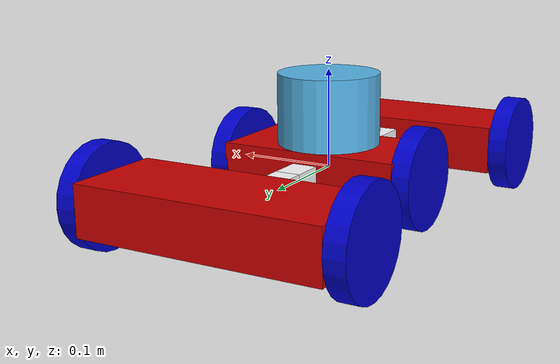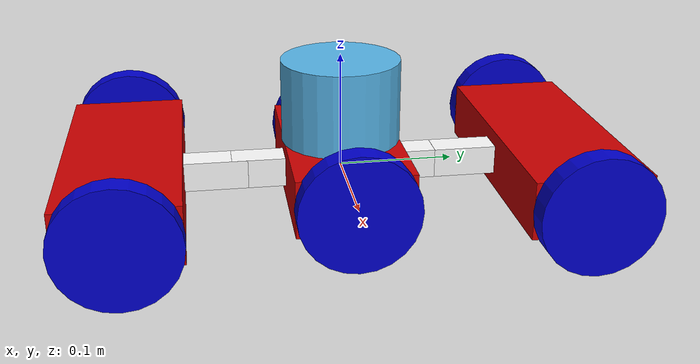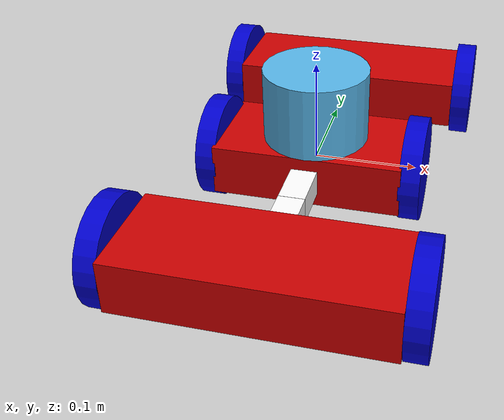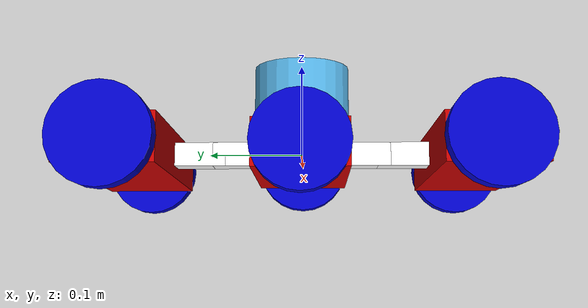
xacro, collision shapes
<?xml version="1.0"?>
<robot xmlns:xacro="http://www.ros.org/wiki/xacro" name="wallcrawler_lidar">
  <xacro:arg name="gpu" default="false"/>
  <xacro:property name="gpu" value="$(arg gpu)" />
    <!-- Define material (colors) -->
    <material name="blue">
        <color rgba="0 0 0.8 1"/>
    </material>

    <material name="white">
        <color rgba="1 1 1 1"/>
    </material>

    <material name="black">
        <color rgba="0.2 0.2 0.2 1"/>
    </material>

    <material name="red">
        <color rgba="0.8 0 0 1"/>
    </material>

    <!-- Define base link (Choosing center segment) -->
    <link name="base_link">
        <visual>
        <geometry>
            <box size="0.184 0.1 0.05"/>
        </geometry>
        <material name="red"/>
        </visual>
        <collision>
        <geometry>
            <box size="0.184 0.1 0.05"/>
        </geometry>
        </collision>
        <inertial>
        <mass value="0.29"/>
        <inertia ixx="0.001483683" ixy="0.0" ixz="0.00" iyy="0.0004067691" iyz="0.00" izz="0.0011120307"/>
        </inertial>
    </link>

    <xacro:include filename="$(find wallcrawler_description)/urdf/VLP-16.urdf.xacro"/>
  <VLP-16 parent="base_link" name="velodyne" topic="/velodyne_points" hz="10" samples="440" gpu="${gpu}">
    <origin xyz="0 0 0.025" rpy="0 0 0" />
  </VLP-16>

    <!-- Wheels attached to base/central link -->
    <link name="center_right_wheel">
        <visual>
        <geometry>
            <cylinder length="0.02" radius="0.051"/>
        </geometry>
        <origin rpy="0 1.57 0" xyz="0 0.0 0.0"/>
        <material name="blue"/>
        </visual>
        <collision>
      <geometry>
            <cylinder length="0.02" radius="0.051"/>
        </geometry>
        <origin rpy="0 1.57 0" xyz="0 0.0 0.0"/>
        </collision>
        <inertial>
        <origin rpy="0 1.57 0" xyz="0 0.0 0.0"/>
        <mass value="0.57"/>
        <inertia ixx="0.0004272539" ixy="0" ixz="0" iyy="0.000804759" iyz="0.00" izz="0.0004272539"/>
        </inertial>
    </link>

    <joint name="center_right_wheel_joint" type="continuous">
        <axis xyz="1 0 0" rpy="0 0 0"/>
        <parent link="base_link"/>
        <child link="center_right_wheel"/>
        <origin xyz="0.1 0.0 0.0"/>
    </joint>

    <gazebo reference="center_right_wheel">
        <mu1 value="200.0"/>
        <mu2 value="100.0"/>
        <kp value="10000000.0"/>
        <kd value="1.0"/>
    </gazebo>

    <transmission name="center_right_wheel_transmission">
        <type>transmission_interface/SimpleTransmission</type>
        <joint name="center_right_wheel_joint">
            <hardwareInterface>VelocityJointInterface</hardwareInterface>
        </joint>
        <actuator name="center_right_wheel_actuator">
            <mechanicalReduction>7</mechanicalReduction>
            <hardwareInterface>VelocityJointInterface</hardwareInterface>
        </actuator>
    </transmission>

    <link name="center_left_wheel">
        <visual>
        <geometry>
            <cylinder length="0.02" radius="0.051"/>
        </geometry>
        <origin rpy="0 1.57 0" xyz="0 0.0 0.0"/>
        <material name="blue"/>
        </visual>
        <collision>
        <geometry>
            <cylinder length="0.02" radius="0.051"/>
        </geometry>
        <origin rpy="0 1.57 0" xyz="0 0.0 0.0"/>
        </collision>
        <inertial>
        <origin rpy="0 1.57 0" xyz="0 0.0 0.0"/>
        <mass value="0.57"/>
        <inertia ixx="0.0004272539" ixy="0" ixz="0" iyy="0.000804759" iyz="0.00" izz="0.0004272539"/>
        </inertial>
    </link>

    <joint name="center_left_wheel_joint" type="continuous">
        <axis xyz="1 0 0"/>
        <parent link="base_link"/>
        <child link="center_left_wheel"/>
        <origin xyz="-0.1 0.0 0.0"/>
    </joint>

    <gazebo reference="center_left_wheel">
        <mu1 value="200.0"/>
        <mu2 value="100.0"/>
        <kp value="10000000.0"/>
        <kd value="1.0"/>
    </gazebo>

    <transmission name="center_left_wheel_transmission">
        <type>transmission_interface/SimpleTransmission</type>
        <joint name="center_left_wheel_joint">
            <hardwareInterface>VelocityJointInterface</hardwareInterface>
        </joint>
        <actuator name="center_left_wheel_actuator">
            <mechanicalReduction>7</mechanicalReduction>
            <hardwareInterface>VelocityJointInterface</hardwareInterface>
        </actuator>
    </transmission>

    <!-- linkage to segment at the front -->

    <link name="base_to_front_link1">
        <visual>
        <geometry>
            <box size="0.0254 0.0254 0.055"/>
        </geometry>
        <material name="white"/>
        <origin rpy="1.57 0 0" xyz="0 0.01875 0"/>
        </visual>
        <collision>
        <geometry>
            <box size="0.0254 0.0254 0.055"/>
        </geometry>
        <origin rpy="1.57 0 0" xyz="0 0.01875 0"/>
        </collision>
        <inertial>
        <origin rpy="1.57 0 0" xyz="0 0.01875 0"/>
        <mass value="0.054"/>
        <inertia ixx="0.000032190362" ixy="0.00" ixz="0.00" iyy="0.000032190362" iyz="0.00" izz="0.000005852793"/>
        </inertial>

    </link>

    <joint name="b2flink1_to_baselink" type="revolute">
        <axis xyz="0 1 0"/>
        <limit effort="10.0" lower="0.0" upper="0.548" velocity="0.5"/>
        <parent link="base_link"/>
        <child link="base_to_front_link1"/>
        <origin xyz="0 0.05 0"/>
    </joint>

    <link name="front_link2">
        <visual>
        <geometry>
            <box size="0.0254 0.0254 0.055"/>
        </geometry>
        <material name="white"/>
        <origin rpy="1.57 0 0" xyz="0 0.0 0"/>
        </visual>
        <collision>
       <geometry>
            <box size="0.0254 0.0254 0.055"/>
        </geometry>
        <origin rpy="1.57 0 0" xyz="0 0.0 0"/>
        </collision>
        <inertial>
        <origin rpy="1.57 0 0" xyz="0 0.0 0"/>
        <mass value="0.054"/>
        <inertia ixx="0.000032190362" ixy="0.00" ixz="0.00" iyy="0.000032190362" iyz="0.00" izz="0.000005852793"/>
        </inertial>
    </link>

    <joint name="b2flink1_to_link2" type="revolute">
        <axis xyz="1 0 0"/>
        <limit effort="10.0" lower="-1.57" upper="1.57" velocity="0.5"/>
        <parent link="base_to_front_link1"/>
        <child link="front_link2"/>
        <origin xyz="0 0.06 0"/>
    </joint>

        <!-- torsional spring element -->
    <gazebo>
        <plugin name="front_torsional_spring" filename="libgazebo_joint_torsional_spring.so">
            <kx>0.1</kx>
            <set_point>0.0</set_point>
            <joint>b2flink1_to_link2</joint>
        </plugin>
    </gazebo>

        <!-- linkage to segment at the back -->

    <link name="base_to_back_link1">
        <visual>
        <geometry>
            <box size="0.0254 0.0254 0.055"/>
        </geometry>
        <material name="white"/>
        <origin rpy="1.57 0 0" xyz="0 -0.01875 0"/>
        </visual>
        <collision>
        <geometry>
            <box size="0.0254 0.0254 0.055"/>
        </geometry>
        <origin rpy="1.57 0 0" xyz="0 -0.01875 0"/>
        </collision>
        <inertial>
        <origin rpy="1.57 0 0" xyz="0 -0.01875 0"/>
        <mass value="0.054"/>
        <inertia ixx="0.000032190362" ixy="0.00" ixz="0.00" iyy="0.000032190362" iyz="0.00" izz="0.000005852793"/>
        </inertial>
    </link>

    <joint name="b2blink1_to_baselink" type="revolute">
        <axis xyz="0 1 0"/>
        <limit effort="1000.0" lower="0.0" upper="0.548" velocity="0.5"/>
        <parent link="base_link"/>
        <child link="base_to_back_link1"/>
        <origin xyz="0 -0.05 0"/>
    </joint>

    <link name="back_link2">
        <visual>
        <geometry>
            <box size="0.0254 0.0254 0.055"/>
        </geometry>
        <material name="white"/>
        <origin rpy="1.57 0 0" xyz="0 0.0 0"/>
        </visual>
        <collision>
        <geometry>
            <box size="0.0254 0.0254 0.055"/>
        </geometry>
        <origin rpy="1.57 0 0" xyz="0 0.0 0"/>
        </collision>
        <inertial>
         <origin rpy="1.57 0 0" xyz="0 0.0 0"/>
        <mass value="0.054"/>
        <inertia ixx="0.000032190362" ixy="0.00" ixz="0.00" iyy="0.000032190362" iyz="0.00" izz="0.000005852793"/>
        </inertial>
    </link>

    <joint name="b2blink1_to_link2" type="revolute">
        <axis xyz="1 0 0"/>
        <limit effort="10.0" lower="-1.57" upper="1.57" velocity="0.5"/>
        <parent link="base_to_back_link1"/>
        <child link="back_link2"/>
        <origin xyz="0 -0.06 0"/>
    </joint>

        <!-- torsional spring element -->
    <gazebo>
        <plugin name="back_torsional_spring" filename="libgazebo_joint_torsional_spring.so">
            <kx>0.1</kx>
            <set_point>0.0</set_point>
            <joint>b2blink1_to_link2</joint>
        </plugin>
    </gazebo>

    <!-- Front segment -->
    <link name="front_base">
        <visual>
        <geometry>
            <box size="0.244 0.1 0.05"/>
        </geometry>
        <material name="red"/>
        <origin xyz="0 0.05 0"/>
        </visual>
        <collision>
        <geometry>
            <box size="0.244 0.1 0.05"/>
        </geometry>
        <origin xyz="0 0.05 0"/>
        </collision>
        <inertial>
        <origin xyz="0 0.05 0"/>
        <mass value="0.53"/>
        <inertia ixx="0.0023674548" ixy="0" ixz="0" iyy="0.0001199823" iyz="0.00" izz="0.0023411172"/>
        </inertial>
    </link>

    <joint name="link2_to_front_base" type="revolute">
        <axis xyz="0 1 0"/>
        <limit effort="10.0" lower="0.0" upper="0.548" velocity="0.5"/>
        <parent link="front_link2"/>
        <child link="front_base"/>
        <origin xyz="0 0.0275 0"/>
    </joint>

<!-- Wheels attached to front segment -->

    <link name="front_right_wheel">
        <visual>
        <geometry>
            <cylinder length="0.02" radius="0.051"/>
        </geometry>
        <origin rpy="0 1.57 0" xyz="0 0.0 0.0"/>
        <material name="blue"/>
        </visual>
        <collision>
        <geometry>
            <cylinder length="0.02" radius="0.051"/>
        </geometry>
        <origin rpy="0 1.57 0" xyz="0 0.0 0.0"/>
        </collision>
        <inertial>
        <origin rpy="0 1.57 0" xyz="0 0.0 0.0"/>
        <mass value="0.57"/>
        <inertia ixx="0.0004272539" ixy="0" ixz="0" iyy="0.000804759" iyz="0.00" izz="0.0004272539"/>
        </inertial>
    </link>

    <joint name="front_right_wheel_joint" type="continuous">
        <axis xyz="1 0 0"/>
        <parent link="front_base"/>
        <child link="front_right_wheel"/>
        <origin xyz="0.132 0.05 0.0"/>
    </joint>

    <gazebo reference="front_right_wheel">
        <mu1 value="200.0"/>
        <mu2 value="100.0"/>
        <kp value="10.0"/>
        <kd value="1.0"/>
    </gazebo>

    <transmission name="front_right_wheel_transmission">
        <type>transmission_interface/SimpleTransmission</type>
        <joint name="front_right_wheel_joint">
            <hardwareInterface>VelocityJointInterface</hardwareInterface>
        </joint>
        <actuator name="front_right_wheel_actuator">
            <mechanicalReduction>1</mechanicalReduction>
            <hardwareInterface>VelocityJointInterface</hardwareInterface>
        </actuator>
    </transmission>

    <link name="front_left_wheel">
        <visual>
        <geometry>
            <cylinder length="0.02" radius="0.051"/>
        </geometry>
        <origin rpy="0 1.57 0" xyz="0 0.0 0.0"/>
        <material name="blue"/>
        </visual>
        <collision>
        <geometry>
            <cylinder length="0.02" radius="0.051"/>
        </geometry>
        <origin rpy="0 1.57 0" xyz="0 0.0 0.0"/>
        </collision>
        <inertial>
        <origin rpy="0 1.57 0" xyz="0 0.0 0.0"/>
        <mass value="0.57"/>
        <inertia ixx="0.0004272539" ixy="0" ixz="0" iyy="0.000804759" iyz="0.00" izz="0.0004272539"/>
        </inertial>
    </link>

   <joint name="front_left_wheel_joint" type="continuous">
        <axis xyz="1 0 0"/>
        <parent link="front_base"/>
        <child link="front_left_wheel"/>
        <origin xyz="-0.132 0.05 0.0"/>
    </joint>
    <gazebo reference="front_left_wheel">
        <mu1 value="200.0"/>
        <mu2 value="100.0"/>
        <kp value="10.0"/>
        <kd value="1.0"/>
    </gazebo>

    <transmission name="front_left_wheel_transmission">
        <type>transmission_interface/SimpleTransmission</type>
        <joint name="front_left_wheel_joint">
            <hardwareInterface>VelocityJointInterface</hardwareInterface>
        </joint>
        <actuator name="front_left_wheel_actuator">
            <mechanicalReduction>1</mechanicalReduction>
            <hardwareInterface>VelocityJointInterface</hardwareInterface>
        </actuator>
    </transmission>

    <!-- Back segment -->
    <link name="back_base">
        <visual>
        <geometry>
            <box size="0.244 0.1 0.05"/>
        </geometry>
        <material name="red"/>
        <origin xyz="0 -0.05 0"/>
        </visual>
        <collision>
        <geometry>
            <box size="0.244 0.1 0.05"/>
        </geometry>
        <origin xyz="0 -0.05 0"/>
        </collision>
        <inertial>
        <origin xyz="0 -0.05 0"/>
        <mass value="0.53"/>
        <inertia ixx="0.0023674548" ixy="0" ixz="0" iyy="0.0001199823" iyz="0.00" izz="0.0023411172"/>
        </inertial>
    </link>

    <joint name="link2_to_back_base" type="revolute">
        <axis xyz="0 1 0"/>
        <limit effort="1000.0" lower="0.0" upper="0.548" velocity="0.5"/>
        <parent link="back_link2"/>
        <child link="back_base"/>
        <origin xyz="0 -0.0275 0"/>
    </joint>

<!-- Wheels attached to Back segment -->
    <link name="back_right_wheel">
        <visual>
        <geometry>
            <cylinder length="0.02" radius="0.051"/>
        </geometry>
        <origin rpy="0 1.57 0" xyz="0 0.0 0.0"/>
        <material name="blue"/>
        </visual>
        <collision>
        <geometry>
            <cylinder length="0.02" radius="0.051"/>
        </geometry>
        <origin rpy="0 1.57 0" xyz="0 0.0 0.0"/>
        </collision>
        <inertial>
        <origin rpy="0 1.57 0" xyz="0 0.0 0.0"/>
        <mass value="0.57"/>
        <inertia ixx="0.0004272539" ixy="0" ixz="0" iyy="0.000804759" iyz="0.00" izz="0.0004272539"/>
        </inertial>
    </link>

    <gazebo reference="back_right_wheel">
        <mu1 value="200.0"/>
        <mu2 value="100.0"/>
        <kp value="10.0"/>
        <kd value="1.0"/>
    </gazebo>

    <joint name="back_right_wheel_joint" type="continuous">
        <axis xyz="1 0 0"/>
        <parent link="back_base"/>
        <child link="back_right_wheel"/>
        <origin xyz="0.132 -0.05 0.0"/>
    </joint>

    <transmission name="back_right_wheel_transmission">
        <type>transmission_interface/SimpleTransmission</type>
        <joint name="back_right_wheel_joint">
            <hardwareInterface>VelocityJointInterface</hardwareInterface>
        </joint>
        <actuator name="back_right_wheel_actuator">
            <mechanicalReduction>1</mechanicalReduction>
            <hardwareInterface>VelocityJointInterface</hardwareInterface>
        </actuator>
    </transmission>

    <link name="back_left_wheel">
        <visual>
        <geometry>
            <cylinder length="0.02" radius="0.051"/>
        </geometry>
        <origin rpy="0 1.57 0" xyz="0 0.0 0.0"/>
        <material name="blue"/>
        </visual>
        <collision>
        <geometry>
            <cylinder length="0.02" radius="0.051"/>
        </geometry>
        <origin rpy="0 1.57 0" xyz="0 0.0 0.0"/>
        </collision>
        <inertial>
        <origin rpy="0 1.57 0" xyz="0 0.0 0.0"/>
        <mass value="0.57"/>
        <inertia ixx="0.0004272539" ixy="0" ixz="0" iyy="0.000804759" iyz="0.00" izz="0.0004272539"/>
        </inertial>
    </link>

    <joint name="back_left_wheel_joint" type="continuous">
        <axis xyz="1 0 0"/>
        <parent link="back_base"/>
        <child link="back_left_wheel"/>
        <origin xyz="-0.132 -0.05 0.0"/>
    </joint>

    <gazebo reference="back_left_wheel">
        <mu1 value="200.0"/>
        <mu2 value="100.0"/>
        <kp value="10.0"/>
        <kd value="1.0"/>
    </gazebo>

    <transmission name="back_left_wheel_transmission">
        <type>transmission_interface/SimpleTransmission</type>
        <joint name="back_left_wheel_joint">
            <hardwareInterface>VelocityJointInterface</hardwareInterface>
        </joint>
        <actuator name="back_left_wheel_actuator">
            <mechanicalReduction>1</mechanicalReduction>
            <hardwareInterface>VelocityJointInterface</hardwareInterface>
        </actuator>
    </transmission>

    <!-- Transmissions - for all not-fixed joints-->
        <!-- linkages-4 -->
            <!-- base to back link, back link, base to front link, front link : revolute joints-->

        <!-- Wheels-6 -->

    <!-- Gazebo Plugin for ROS Control -->
    <gazebo>
        <plugin name="gazebo_ros_control" filename="libgazebo_ros_control.so">
        <robotNamespace>/</robotNamespace>
        </plugin>
    </gazebo>

</robot>

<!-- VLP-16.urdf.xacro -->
<robot xmlns:xacro="http://www.ros.org/wiki/xacro" name="VLP-16">
  <xacro:property name="M_PI" value="3.1415926535897931" />
  <xacro:macro name="VLP-16" params="*origin parent:=base_link name:=velodyne topic:=/velodyne_points hz:=10 lasers:=16 samples:=1875 collision_range:=0.3 min_range:=0.9 max_range:=130.0 noise:=0.008 min_angle:=-${M_PI} max_angle:=${M_PI} gpu:=false">

    <joint name="${name}_base_mount_joint" type="fixed">
      <xacro:insert_block name="origin" />
      <parent link="${parent}"/>
      <child link="${name}_base_link"/>
    </joint>

    <link name="${name}_base_link">
      <inertial>
        <mass value="0.83"/>
        <origin xyz="0 0 0.03585"/>
        <inertia ixx="${(0.83 * (3.0*0.0516*0.0516 + 0.0717*0.0717)) / 12.0}" ixy="0" ixz="0"
          iyy="${(0.83 * (3.0*0.0516*0.0516 + 0.0717*0.0717)) / 12.0}" iyz="0"
          izz="${0.5 * 0.83 * (0.0516*0.0516)}"/>
      </inertial>
      <visual>
        <geometry>
          <mesh filename="package://wallcrawler_description/meshes/lidar/VLP16_base_1.dae" />
        </geometry>
      </visual>
      <visual>
        <geometry>
          <mesh filename="package://wallcrawler_description/meshes/lidar/VLP16_base_2.dae" />
        </geometry>
      </visual>
      <collision>
        <origin rpy="0 0 0" xyz="0 0 0.03585"/>
        <geometry>
          <cylinder radius="0.0516" length="0.0717"/>
        </geometry>
      </collision>
    </link>

    <joint name="${name}_base_scan_joint" type="fixed" >
      <origin xyz="0 0 0.0377" rpy="0 0 0" />
      <parent link="${name}_base_link" />
      <child link="${name}"/>
    </joint>

    <link name="${name}">
      <inertial>
        <mass value="0.01"/>
        <origin xyz="0 0 0"/>
        <inertia ixx="1e-7" ixy="0" ixz="0" iyy="1e-7" iyz="0" izz="1e-7"/>
      </inertial>
      <visual>
        <origin xyz="0 0 -0.0377" />
        <geometry>
          <mesh filename="package://wallcrawler_description/meshes/lidar/VLP16_scan.dae" />
        </geometry>
      </visual>
    </link>

    <!-- Gazebo requires the velodyne_gazebo_plugins package -->
    <gazebo reference="${name}">
      <xacro:if value="${gpu}">
        <sensor type="gpu_ray" name="${name}-VLP16">
          <pose>0 0 0 0 0 0</pose>
          <visualize>false</visualize>
          <update_rate>${hz}</update_rate>
          <ray>
            <scan>
              <horizontal>
                <samples>${samples}</samples>
                <resolution>1</resolution>
                <min_angle>${min_angle}</min_angle>
                <max_angle>${max_angle}</max_angle>
              </horizontal>
              <vertical>
                <samples>${lasers}</samples>
                <resolution>1</resolution>
                <min_angle>-${15.0*M_PI/180.0}</min_angle>
                <max_angle> ${15.0*M_PI/180.0}</max_angle>
              </vertical>
            </scan>
            <range>
              <min>${collision_range}</min>
              <max>${max_range+1}</max>
              <resolution>0.001</resolution>
            </range>
            <noise>
              <type>gaussian</type>
              <mean>0.0</mean>
              <stddev>0.0</stddev>
            </noise>
          </ray>
          <plugin name="gazebo_ros_laser_controller" filename="libgazebo_ros_velodyne_gpu_laser.so">
            <topicName>${topic}</topicName>
            <frameName>${name}</frameName>
            <min_range>${min_range}</min_range>
            <max_range>${max_range}</max_range>
            <gaussianNoise>${noise}</gaussianNoise>
          </plugin>
        </sensor>
      </xacro:if>
      <xacro:unless value="${gpu}">
        <sensor type="ray" name="${name}-VLP16">
          <pose>0 0 0 0 0 0</pose>
          <visualize>false</visualize>
          <update_rate>${hz}</update_rate>
          <ray>
            <scan>
              <horizontal>
                <samples>${samples}</samples>
                <resolution>1</resolution>
                <min_angle>${min_angle}</min_angle>
                <max_angle>${max_angle}</max_angle>
              </horizontal>
              <vertical>
                <samples>${lasers}</samples>
                <resolution>1</resolution>
                <min_angle>-${15.0*M_PI/180.0}</min_angle>
                <max_angle> ${15.0*M_PI/180.0}</max_angle>
              </vertical>
            </scan>
            <range>
              <min>${collision_range}</min>
              <max>${max_range+1}</max>
              <resolution>0.001</resolution>
            </range>
            <noise>
              <type>gaussian</type>
              <mean>0.0</mean>
              <stddev>0.0</stddev>
            </noise>
          </ray>
          <plugin name="gazebo_ros_laser_controller" filename="libgazebo_ros_velodyne_laser.so">
            <topicName>${topic}</topicName>
            <frameName>${name}</frameName>
            <min_range>${min_range}</min_range>
            <max_range>${max_range}</max_range>
            <gaussianNoise>${noise}</gaussianNoise>
          </plugin>
        </sensor>
      </xacro:unless>
    </gazebo>

  </xacro:macro>
</robot>
